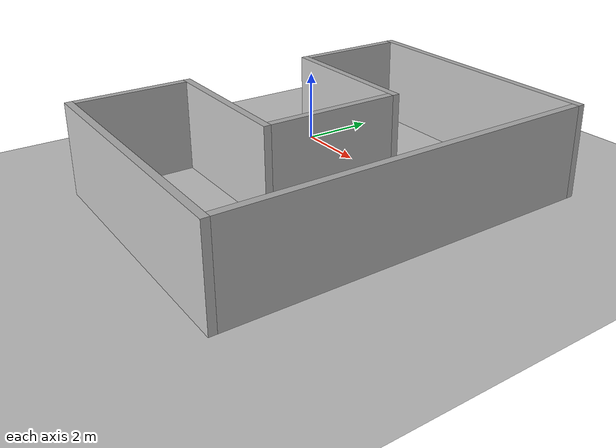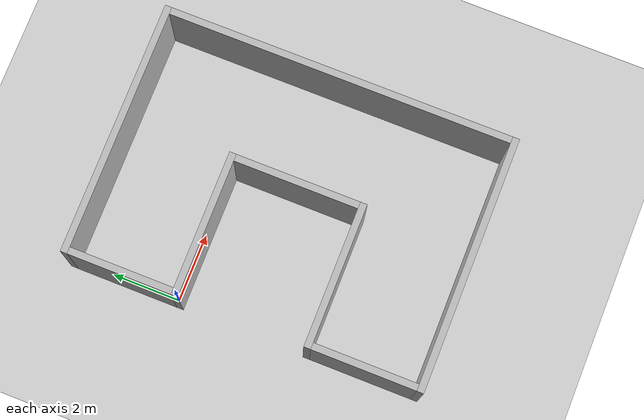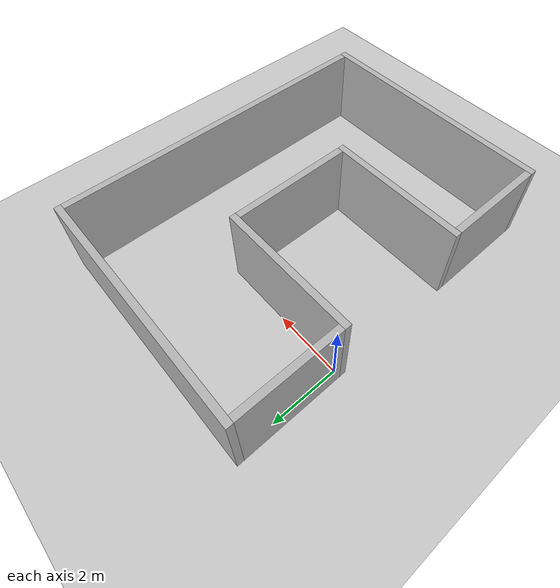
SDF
<?xml version="1.0" ?>
<sdf version="1.4">
	<world name="feedback_experiment_world_2">
		<scene>
			<sky/>
		</scene>
		<include>
			<uri>model://ground_plane</uri>
		</include>
		<include>
			<uri>model://sun</uri>
		</include>
		<model name='BuildingDefaultName'>
			<link name='Wall_1'>
				<collision name='Wall_1_Collision'>
					<geometry>
						<box>
							<size>7.4 0.2 2.5</size>
						</box>
					</geometry>
					<pose>0 0 1.25 0 0 0</pose>
				</collision>
				<visual name='Wall_1_Visual'>
					<pose>0 0 1.25 0 0 0</pose>
					<geometry>
						<box>
						<size>7.4 0.2 2.5</size>
						</box>
					</geometry>
					<material>
						<script>
						<uri>file://media/materials/scripts/kitchen.material</uri>
						<name>Kitchen/Wall</name>
						</script>
					</material>
				</visual>
				<velocity_decay>
					<linear>0</linear>
					<angular>0</angular>
				</velocity_decay>
				<pose>3.5 3.1 0 0 0 0</pose>
			</link>
			<link name='Wall_2'>
				<collision name='Wall_2_Collision'>
					<geometry>
						<box>
							<size>10 0.2 2.5</size>
						</box>
					</geometry>
					<pose>0 0 1.25 0 0 0</pose>
				</collision>
				<visual name='Wall_2_Visual'>
					<pose>0 0 1.25 0 0 0</pose>
					<geometry>
						<box>
							<size>10 0.2 2.5</size>
						</box>
					</geometry>
					<material>
						<script>
							<uri>file://media/materials/scripts/kitchen.material</uri>
							<name>Kitchen/Wall</name>
						</script>
					</material>
				</visual>
				<velocity_decay>
					<linear>0</linear>
					<angular>0</angular>
				</velocity_decay>
				<pose>7.1 -2 0 0 0 1.5708</pose>
			</link>
			<link name='Wall_3'>
				<collision name='Wall_3_Collision'>
					<geometry>
						<box>
							<size>7.4 0.2 2.5</size>
						</box>
					</geometry>
					<pose>0 0 1.25 0 0 0</pose>
				</collision>
				<visual name='Wall_3_Visual'>
					<pose>0 0 1.25 0 0 0</pose>
					<geometry>
						<box>
							<size>7.4 0.2 2.5</size>
						</box>
					</geometry>
					<material>
						<script>
							<uri>file://media/materials/scripts/kitchen.material</uri>
							<name>Kitchen/Wall</name>
						</script>
					</material>
				</visual>
				<velocity_decay>
					<linear>0</linear>
					<angular>0</angular>
				</velocity_decay>
				<pose>3.5 -7.1 0 0 0 0</pose>
			</link>
			<link name='Wall_4'>
				<collision name='Wall_4_Collision'>
					<geometry>
						<box>
							<size>3 0.2 2.5</size>
						</box>
					</geometry>
					<pose>0 0 1.25 0 0 0</pose>
				</collision>
				<visual name='Wall_4_Visual'>
					<pose>0 0 1.25 0 0 0</pose>
					<geometry>
						<box>
							<size>3 0.2 2.5</size>
						</box>
					</geometry>
					<material>
					<script>
						<uri>file://media/materials/scripts/kitchen.material</uri>
						<name>Kitchen/Wall</name>
					</script>
					</material>
				</visual>
				<velocity_decay>
					<linear>0</linear>
					<angular>0</angular>
				</velocity_decay>
				<pose>-0.1 -5.5 0 0 0 1.5708</pose>
			</link>
			<link name='Wall_5'>
				<collision name='Wall_5_Collision'>
					<geometry>
						<box>
							<size>4.2 0.2 2.5</size>
						</box>
					</geometry>
					<pose>0 0 1.25 0 0 0</pose>
				</collision>
				<visual name='Wall_5_Visual'>
					<pose>0 0 1.25 0 0 0</pose>
					<geometry>
						<box>
							<size>4.2 0.2 2.5</size>
						</box>
					</geometry>
					<material>
					<script>
						<uri>file://media/materials/scripts/kitchen.material</uri>
						<name>Kitchen/Wall</name>
					</script>
					</material>
				</visual>
				<velocity_decay>
					<linear>0</linear>
					<angular>0</angular>
				</velocity_decay>
				<pose>1.9 -3.9 0 0 0 3.14159</pose>
			</link>
			<link name='Wall_6'>
				<collision name='Wall_6_Collision'>
					<geometry>
						<box>
							<size>3.6 0.2 2.5</size>
						</box>
					</geometry>
					<pose>0 0 1.25 0 0 0</pose>
				</collision>
				<visual name='Wall_6_Visual'>
					<pose>0 0 1.25 0 0 0</pose>
					<geometry>
						<box>
							<size>3.6 0.2 2.5</size>
						</box>
					</geometry>
					<material>
					<script>
						<uri>file://media/materials/scripts/kitchen.material</uri>
						<name>Kitchen/Wall</name>
					</script>
					</material>
				</visual>
				<velocity_decay>
					<linear>0</linear>
					<angular>0</angular>
				</velocity_decay>
				<pose>3.9 -2 0 0 0 -1.5708</pose>
			</link>
			<link name='Wall_7'>
				<collision name='Wall_7_Collision'>
					<geometry>
						<box>
							<size>4.2 0.2 2.5</size>
						</box>
					</geometry>
					<pose>0 0 1.25 0 0 0</pose>
				</collision>
				<visual name='Wall_7_Visual'>
					<pose>0 0 1.25 0 0 0</pose>
					<geometry>
						<box>
							<size>4.2 0.2 2.5</size>
						</box>
					</geometry>
					<material>
					<script>
						<uri>file://media/materials/scripts/kitchen.material</uri>
						<name>Kitchen/Wall</name>
					</script>
					</material>
				</visual>
				<velocity_decay>
					<linear>0</linear>
					<angular>0</angular>
				</velocity_decay>
				<pose>1.9 -0.1 0 0 0 3.14159</pose>
			</link>
			<link name='Wall_8'>
				<collision name='Wall_8_Collision'>
					<geometry>
						<box>
							<size>3 0.2 2.5</size>
						</box>
					</geometry>
					<pose>0 0 1.25 0 0 0</pose>
				</collision>
				<visual name='Wall_8_Visual'>
					<pose>0 0 1.25 0 0 0</pose>
					<geometry>
						<box>
							<size>3 0.2 2.5</size>
						</box>
					</geometry>
					<material>
					<script>
						<uri>file://media/materials/scripts/kitchen.material</uri>
						<name>Kitchen/Wall</name>
					</script>
					</material>
				</visual>
				<velocity_decay>
					<linear>0</linear>
					<angular>0</angular>
				</velocity_decay>
				<pose>-0.1 1.5 0 0 0 -1.5708</pose>
			</link>
			<static>1</static>
		</model>
	</world>
</sdf>
